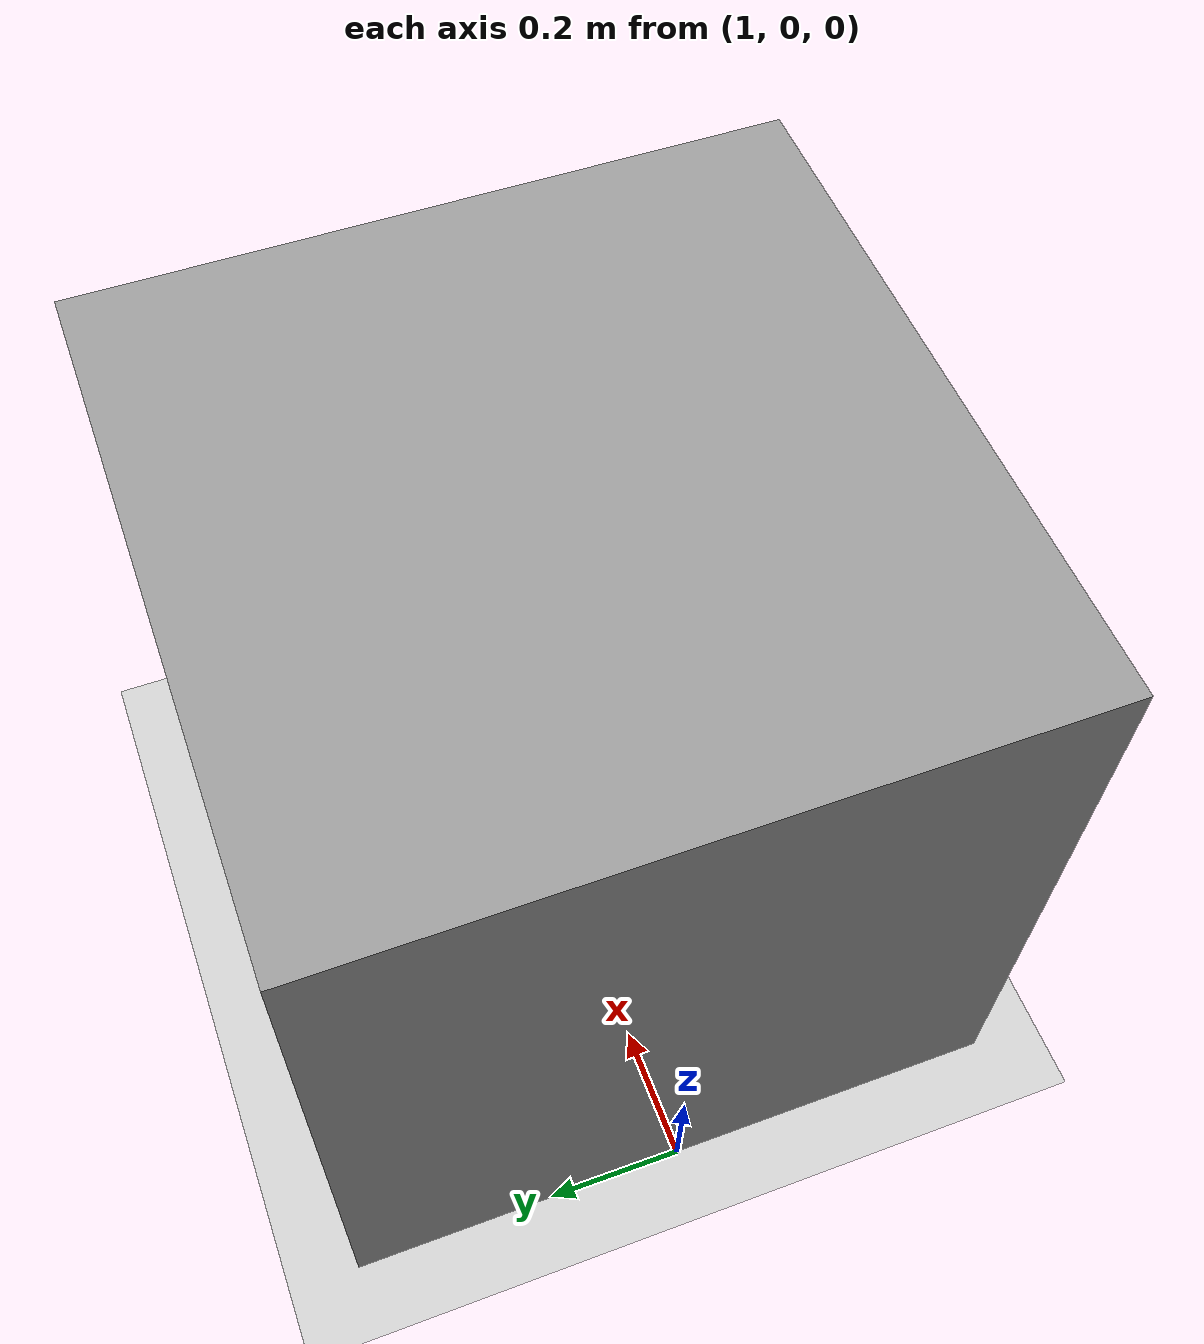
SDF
<sdf version='1.7'>
  <world name='default'>
    <light name='sun' type='directional'>
      <cast_shadows>1</cast_shadows>
      <pose>0 0 10 0 -0 0</pose>
      <diffuse>0.8 0.8 0.8 1</diffuse>
      <specular>0.2 0.2 0.2 1</specular>
      <attenuation>
        <range>1000</range>
        <constant>0.9</constant>
        <linear>0.01</linear>
        <quadratic>0.001</quadratic>
      </attenuation>
      <direction>-0.5 0.1 -0.9</direction>
      <spot>
        <inner_angle>0</inner_angle>
        <outer_angle>0</outer_angle>
        <falloff>0</falloff>
      </spot>
    </light>
    <model name='ground_plane'>
      <static>1</static>
      <link name='link'>
        <collision name='collision'>
          <geometry>
            <plane>
              <normal>0 0 1</normal>
              <size>100 100</size>
            </plane>
          </geometry>
          <surface>
            <friction>
              <ode>
                <mu>100</mu>
                <mu2>50</mu2>
              </ode>
              <torsional>
                <ode/>
              </torsional>
            </friction>
            <contact>
              <ode/>
            </contact>
            <bounce/>
          </surface>
          <max_contacts>10</max_contacts>
        </collision>
        <visual name='visual'>
          <cast_shadows>0</cast_shadows>
          <geometry>
            <plane>
              <normal>0 0 1</normal>
              <size>100 100</size>
            </plane>
          </geometry>
          <material>
            <script>
              <uri>file://media/materials/scripts/gazebo.material</uri>
              <name>Gazebo/Grey</name>
            </script>
          </material>
        </visual>
        <self_collide>0</self_collide>
        <enable_wind>0</enable_wind>
        <kinematic>0</kinematic>
      </link>
    </model>
    <model name='unit_box'>
      <pose>1.5 0.0 0.5 0 -0 0</pose>
      <link name='link'>
        <inertial>
          <mass>1</mass>
          <inertia>
            <ixx>0.166667</ixx>
            <ixy>0</ixy>
            <ixz>0</ixz>
            <iyy>0.166667</iyy>
            <iyz>0</iyz>
            <izz>0.166667</izz>
          </inertia>
          <pose>0 0 0 0 -0 0</pose>
        </inertial>
        <collision name='collision'>
          <geometry>
            <box>
              <size>1 1 1</size>
            </box>
          </geometry>
          <max_contacts>10</max_contacts>
          <surface>
            <contact>
              <ode/>
            </contact>
            <bounce/>
            <friction>
              <torsional>
                <ode/>
              </torsional>
              <ode/>
            </friction>
          </surface>
        </collision>
        <visual name='visual'>
          <geometry>
            <box>
              <size>1 1 1</size>
            </box>
          </geometry>
          <material>
            <script>
              <name>Gazebo/Grey</name>
              <uri>file://media/materials/scripts/gazebo.material</uri>
            </script>
          </material>
        </visual>
        <self_collide>0</self_collide>
        <enable_wind>0</enable_wind>
        <kinematic>0</kinematic>
      </link>
    </model>
  </world>
</sdf>
